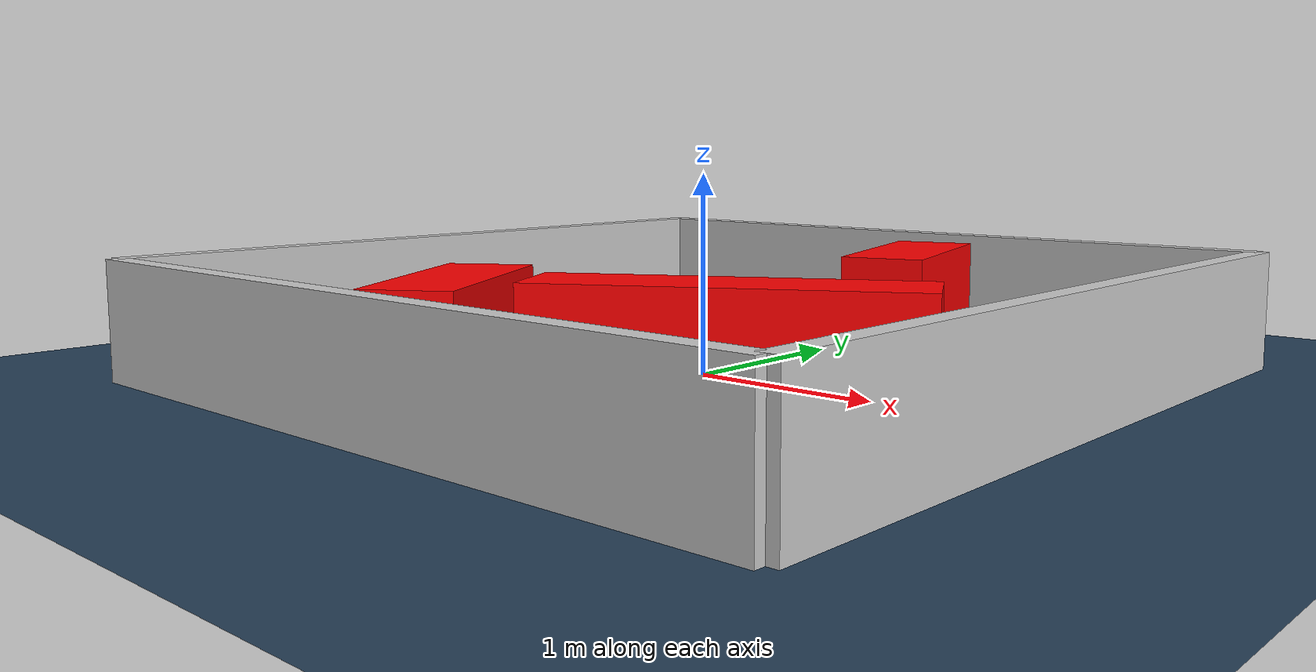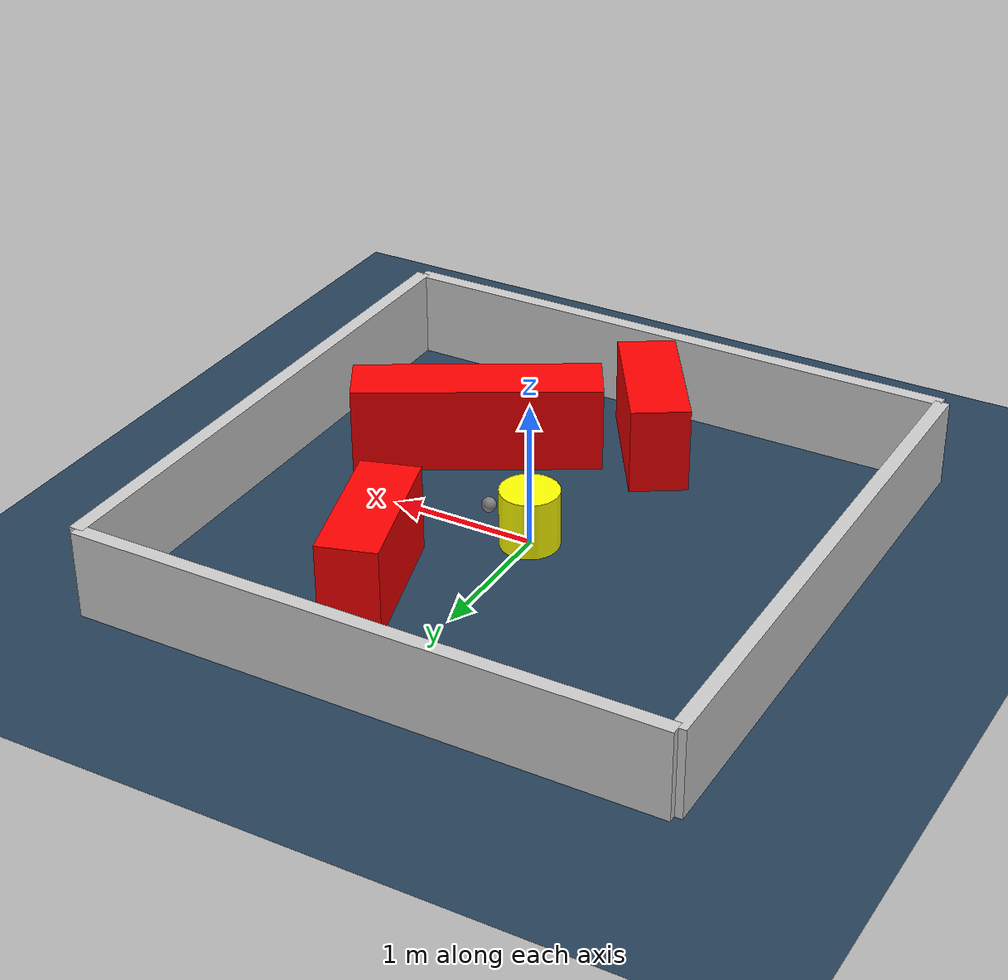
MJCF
<?xml version="1.0" ?>
<mujoco model="generated_environment">
  <option timestep="0.01" integrator="RK4" cone="elliptic"/>
  <default>
    <geom density="1"/>
  </default>
  <asset>
    <texture builtin="gradient" height="3072" rgb1="0.3 0.5 0.7" rgb2="0 0 0" type="skybox" width="512"/>
    <texture builtin="checker" height="300" mark="edge" markrgb="0.8 0.8 0.8" name="groundplane" rgb1="0.2 0.3 0.4" rgb2="0.1 0.2 0.3" type="2d" width="300"/>
    <material name="groundplane" reflectance="0.2" texrepeat="5 5" texture="groundplane" texuniform="true"/>
    <material name="robot" rgba="0.0 1.0 0.0 1"/>
  </asset>
  <worldbody>
    <light dir="0 0 -1" directional="true" pos="0 0 1.5"/>
    <geom condim="4" friction="1.0 0.005 0.001" material="groundplane" name="floor" size="0 0 0.05" type="plane"/>
    <body name="walls">
      <geom name="wall_1" condim="4" pos="-2.0 0.0 0.3" rgba="0.800000011920929 0.800000011920929 0.800000011920929 1.0" size="0.05 2.0 0.3" type="box"/>
      <geom name="wall_2" condim="4" pos="2.0 0.0 0.3" rgba="0.800000011920929 0.800000011920929 0.800000011920929 1.0" size="0.05 2.0 0.3" type="box"/>
      <geom name="wall_3" condim="4" pos="0.0 -2.0 0.3" rgba="0.800000011920929 0.800000011920929 0.800000011920929 1.0" size="2.0 0.05 0.3" type="box"/>
      <geom name="wall_4" condim="4" pos="0.0 2.0 0.3" rgba="0.800000011920929 0.800000011920929 0.800000011920929 1.0" size="2.0 0.05 0.3" type="box"/>
    </body>
    <body name="robot">
      <joint name="joint_x" type="slide" pos="0 0 0" axis="1 0 0"/>
      <joint name="joint_y" type="slide" pos="0 0 0" axis="0 1 0"/>
      <geom name="robot" type="sphere" pos="0.3 0.0 0.2" size="0.05" mass="5." friction="1.0 0.005 0.0001" condim="4" rgba="0.5 0.5 0.5 1.0"/>
      <site name="sensor_ball"/>
    </body>
    <body name="obstacle_movable_1">
      <geom name="obstacle_movable_1" condim="4" pos="0.0 0.0 0.2" euler="0 0 0.0" friction="1.0 0.005 0.001" rgba="1.0 1.0 0.0 1.0" size="0.2 0.2 0.0" type="cylinder" mass="0.1"/>
      <joint type="free"/>
    </body>
    <body name="obstacle_2_static">
      <geom name="obstacle_2_static" condim="4" pos="-0.17399560080019594 -1.4038170878967648 0.3" euler="0 0 301.9180928997985" friction="1.0 0.005 0.001" rgba="1 0 0 1" size="0.5037066584141685 0.2 0.3" type="box"/>
    </body>
    <body name="obstacle_3_static">
      <geom name="obstacle_3_static" condim="4" pos="0.8494587105631346 -0.8003621213265468 0.3" euler="0 0 209.62609080354412" friction="1.0 0.005 0.001" rgba="1 0 0 1" size="0.844958103555222 0.2 0.3" type="box"/>
    </body>
    <body name="obstacle_4_static">
      <geom name="obstacle_4_static" condim="4" pos="0.6093460189417781 0.9223587878999366 0.3" euler="0 0 106.83487689014035" friction="1.0 0.005 0.001" rgba="1 0 0 1" size="0.5092621525874239 0.2 0.3" type="box"/>
    </body>
  </worldbody>
  <actuator>
    <motor name="actuator_x" joint="joint_x" gear="1" ctrlrange="-1 1"/>
    <motor name="actuator_y" joint="joint_y" gear="1" ctrlrange="-1 1"/>
  </actuator>
</mujoco>
